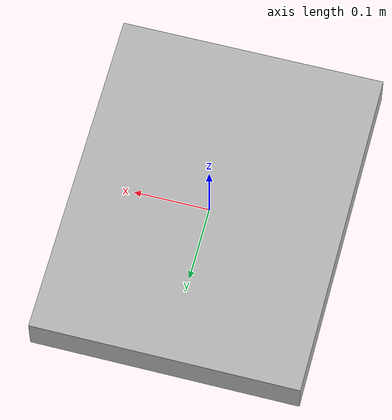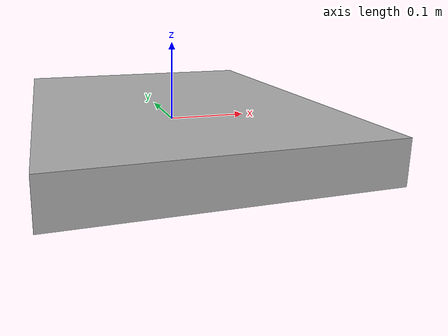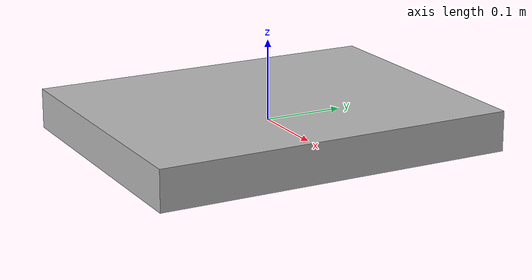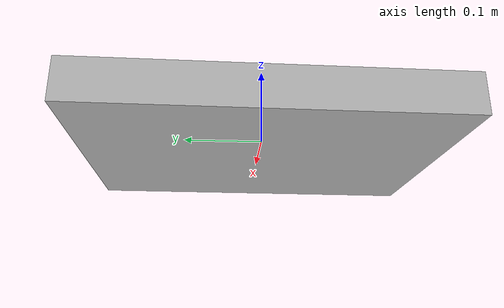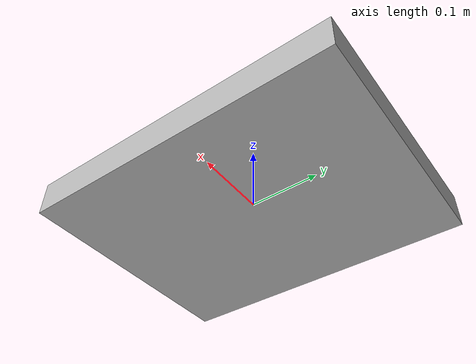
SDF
<?xml version="1.0" ?>
<sdf version="1.5">
  <model name="checkerboard1">
    <static>true</static>
    <link name="square_01">
      <pose>0 0 0 0 0 0</pose>
      <visual name="visual">
	<geometry>
	  <box>
	    <size>0.35 0.45 0.05</size>
	  </box>
	</geometry>
	<material>
	  <script>
            <uri>model://checkerboard_textured_1</uri>
            <name>Checkerboard/Diffuse</name>
          </script>
	</material>
      </visual>
    </link>
  </model>
</sdf>
